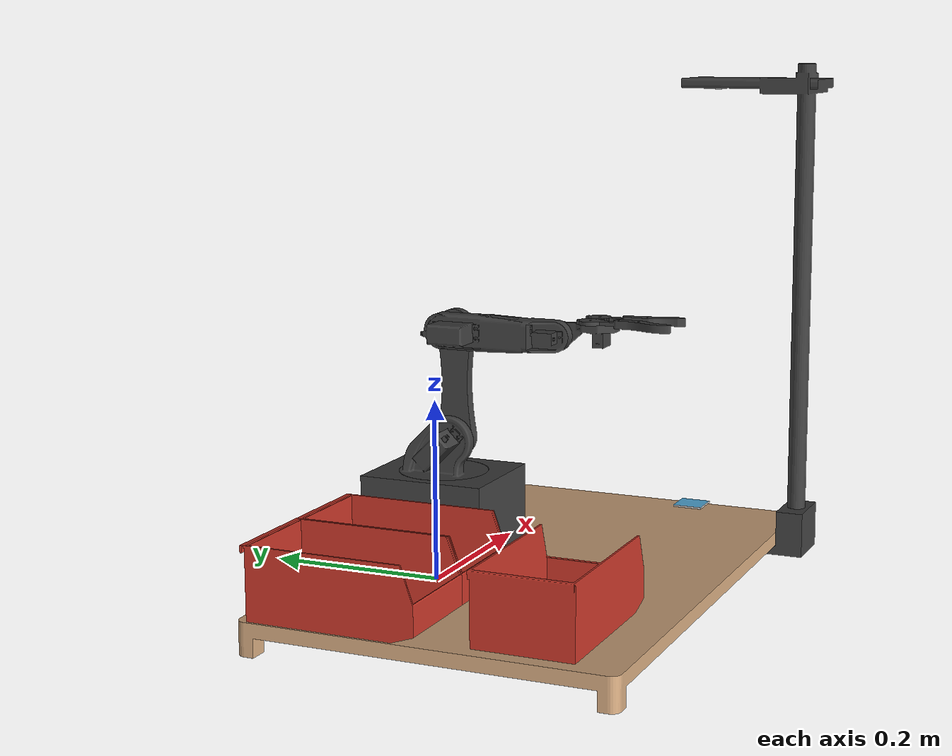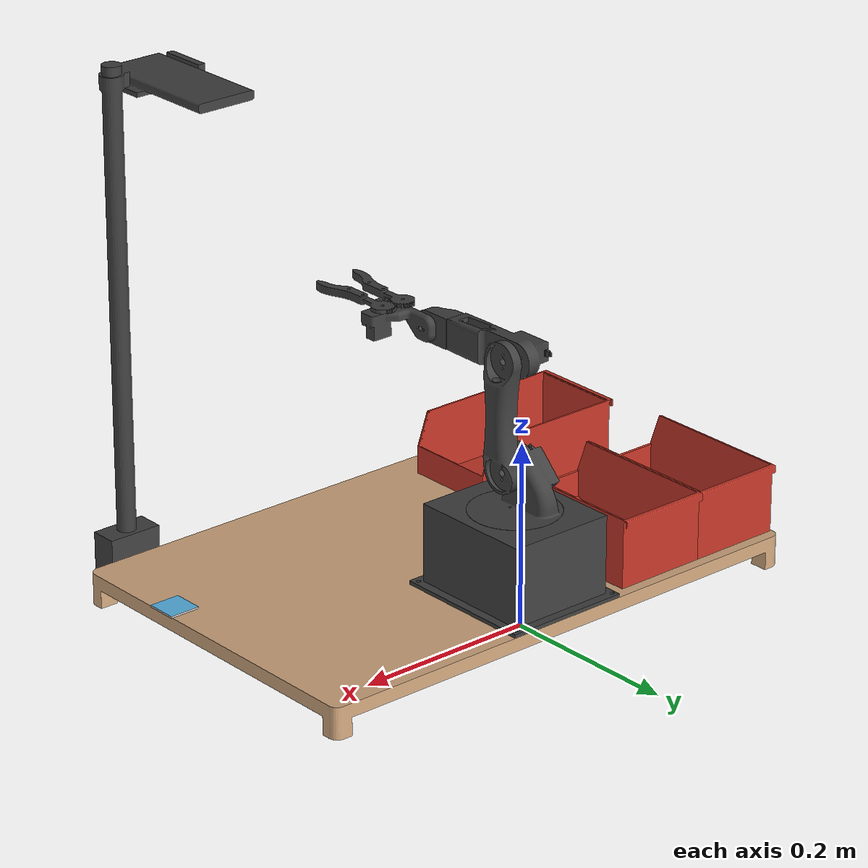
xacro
<?xml version="1.0" encoding = "UTF-8"?>
<robot name="robotic_arm" xmlns:xacro="http://www.ros.org/wiki/xacro">

<!-- Load Simulated or Real Hardware Interfaces -->
<xacro:arg name="sim_mode" default="true"/>

<!-- Include materials properties to be used with rviz -->
<xacro:include filename="$(find robotic_arm_description)/urdf/materials.xacro" />

<xacro:include filename="$(find robotic_arm_description)/urdf/robotic_arm.trans" />
<!-- Include material properties to be used in gazebo -->
<xacro:include filename="$(find robotic_arm_description)/urdf/robotic_arm_gazebo.xacro"/>

<!-- Include ros2_control plugin-->
<xacro:include filename="$(find robotic_arm_description)/urdf/robotic_arm_ros2_control.xacro"/>

<!-- Include camera plugins -->
<xacro:include filename="$(find robotic_arm_description)/urdf/robotic_arm_camera.xacro"/>

<!-- Links -->
<link name = "world"/>

<!--include aruco marke-->
<xacro:include filename="$(find robotic_arm_description)/urdf/aruco_marker.xacro"/>

<!-- Properties -->
<xacro:property name="PI" value="3.147"/>

<link name="base_link">
  <inertial>
    <origin xyz="2.5964963671146073e-05 -0.12750519341019426 0.02735001860163422" rpy="0 0 0"/>
    <mass value="2.562361438794821"/>
    <inertia ixx="0.033829" iyy="0.076749" izz="0.110468" ixy="-2e-06" iyz="0.0" ixz="-0.0"/>
  </inertial>
  <visual>
    <origin xyz="0 0 0" rpy="0 0 0"/>
    <geometry>
      <mesh filename="package://robotic_arm_description/meshes/base_link.stl" scale="0.001 0.001 0.001"/>
    </geometry>
    <material name="oak"/>
  </visual>
  <collision>
    <origin xyz="0 0 0" rpy="0 0 0"/>
    <geometry>
      <mesh filename="package://robotic_arm_description/meshes/base_link.stl" scale="0.001 0.001 0.001"/>
    </geometry>
  </collision>
</link>

<link name="container_cubes">
  <inertial>
    <origin xyz="0.0021344768560282723 -1.5647124724599282e-05 0.026103286200414536" rpy="0 0 0"/>
    <mass value="0.8859344258495231"/>
    <inertia ixx="0.002047" iyy="0.003759" izz="0.004728" ixy="1e-06" iyz="0.0" ixz="0.000223"/>
  </inertial>
  <visual>
    <origin xyz="0.2025 0.225 -0.035" rpy="0 0 0"/>
    <geometry>
      <mesh filename="package://robotic_arm_description/meshes/container_cubes.stl" scale="0.001 0.001 0.001"/>
    </geometry>
    <material name="led_red"/>
  </visual>
  <collision>
    <origin xyz="0.2025 0.225 -0.035" rpy="0 0 0"/>
    <geometry>
      <mesh filename="package://robotic_arm_description/meshes/container_cubes.stl" scale="0.001 0.001 0.001"/>
    </geometry>
  </collision>
</link>

<link name="container_cylinders">
  <inertial>
    <origin xyz="-1.565155782010108e-05 -0.0021344802460424653 0.026103286200414424" rpy="0 0 0"/>
    <mass value="0.8859344258495231"/>
    <inertia ixx="0.003759" iyy="0.002047" izz="0.004728" ixy="-1e-06" iyz="-0.000223" ixz="0.0"/>
  </inertial>
  <visual>
    <origin xyz="0.2425 0.02 -0.035" rpy="0 0 0"/>
    <geometry>
      <mesh filename="package://robotic_arm_description/meshes/container_cylinders.stl" scale="0.001 0.001 0.001"/>
    </geometry>
    <material name="led_red"/>
  </visual>
  <collision>
    <origin xyz="0.2425 0.02 -0.035" rpy="0 0 0"/>
    <geometry>
      <mesh filename="package://robotic_arm_description/meshes/container_cylinders.stl" scale="0.001 0.001 0.001"/>
    </geometry>
  </collision>
</link>

<link name="container_hexagons">
  <inertial>
    <origin xyz="-1.565155782010108e-05 -0.0021344802460424445 0.0261032862004145" rpy="0 0 0"/>
    <mass value="0.8859344258495231"/>
    <inertia ixx="0.003759" iyy="0.002047" izz="0.004728" ixy="-1e-06" iyz="-0.000223" ixz="0.0"/>
  </inertial>
  <visual>
    <origin xyz="0.1375 0.02 -0.035" rpy="0 0 0"/>
    <geometry>
      <mesh filename="package://robotic_arm_description/meshes/container_hexagons.stl" scale="0.001 0.001 0.001"/>
    </geometry>
    <material name="led_red"/>
  </visual>
  <collision>
    <origin xyz="0.1375 0.02 -0.035" rpy="0 0 0"/>
    <geometry>
      <mesh filename="package://robotic_arm_description/meshes/container_hexagons.stl" scale="0.001 0.001 0.001"/>
    </geometry>
  </collision>
</link>

<link name="camera_support">
  <inertial>
    <origin xyz="-0.018363826080468604 -0.008283937089531401 0.3065870557744901" rpy="0 0 0"/>
    <mass value="2.9385762719335418"/>
    <inertia ixx="0.133646" iyy="0.133692" izz="0.00521" ixy="0.001039" iyz="-0.006152" ixz="0.011452"/>
  </inertial>
  <visual>
    <origin xyz="-0.2675 0.32 -0.019" rpy="0 0 0"/>
    <geometry>
      <mesh filename="package://robotic_arm_description/meshes/camera_support.stl" scale="0.001 0.001 0.001"/>
    </geometry>
    <material name="black_3d_printed"/>
  </visual>
  <collision>
    <origin xyz="-0.2675 0.32 -0.019" rpy="0 0 0"/>
    <geometry>
      <mesh filename="package://robotic_arm_description/meshes/camera_support.stl" scale="0.001 0.001 0.001"/>
    </geometry>
  </collision>
</link>

<link name="camera_link">
  <inertial>
    <origin xyz="-2.682209454540896e-10 4.349266702619037e-07 -0.0009999921768903963" rpy="0 0 0"/>
    <mass value="0.006279999999999998"/>
    <inertia ixx="0.0" iyy="0.0" izz="0.0" ixy="0.0" iyz="0.0" ixz="-0.0"/>
  </inertial>
  <visual>
    <origin xyz="-0.2245 0.249302 -0.53399" rpy="0 0 0"/>
    <geometry>
      <mesh filename="package://robotic_arm_description/meshes/camera_link.stl" scale="0.001 0.001 0.001"/>
    </geometry>
    <material name="steel_satin"/>
  </visual>
  <collision>
    <origin xyz="-0.2245 0.249302 -0.53399" rpy="0 0 0"/>
    <geometry>
      <mesh filename="package://robotic_arm_description/meshes/camera_link.stl" scale="0.001 0.001 0.001"/>
    </geometry>
  </collision>
</link>

<link name="camera_link_frame">
</link>

<link name="base">
  <inertial>
    <origin xyz="6.051376774735407e-07 -0.08000032966587473 0.05136562059426733" rpy="0 0 0"/>
    <mass value="0.5102582987586253"/>
    <inertia ixx="0.00162" iyy="0.001541" izz="0.002267" ixy="-0.0" iyz="-0.0" ixz="0.0"/>
  </inertial>
  <visual>
    <origin xyz="-0.0 -0.07 -0.035" rpy="0 0 0"/>
    <geometry>
      <mesh filename="package://robotic_arm_description/meshes/base.stl" scale="0.001 0.001 0.001"/>
    </geometry>
    <material name="black_3d_printed"/>
  </visual>
  <collision>
    <origin xyz="-0.0 -0.07 -0.035" rpy="0 0 0"/>
    <geometry>
      <mesh filename="package://robotic_arm_description/meshes/base.stl" scale="0.001 0.001 0.001"/>
    </geometry>
  </collision>
</link>

<link name="waist">
  <inertial>
    <origin xyz="-0.013899791072812993 -0.0032841190361416073 0.023721429685911427" rpy="0 0 0"/>
    <mass value="0.11734363935702768"/>
    <inertia ixx="8.6e-05" iyy="7.9e-05" izz="8.5e-05" ixy="-3e-06" iyz="1.1e-05" ixz="1.4e-05"/>
  </inertial>
  <visual>
    <origin xyz="0.0 0.01 -0.121" rpy="0 0 0"/>
    <geometry>
      <mesh filename="package://robotic_arm_description/meshes/waist.stl" scale="0.001 0.001 0.001"/>
    </geometry>
    <material name="black_3d_printed"/>
  </visual>
  <collision>
    <origin xyz="0.0 0.01 -0.121" rpy="0 0 0"/>
    <geometry>
      <mesh filename="package://robotic_arm_description/meshes/waist.stl" scale="0.001 0.001 0.001"/>
    </geometry>
  </collision>
</link>

<link name="link_1">
  <inertial>
    <origin xyz="0.007817729878360883 -4.041924911227235e-07 0.06000021649587681" rpy="0 0 0"/>
    <mass value="0.07112302510728019"/>
    <inertia ixx="0.000121" iyy="0.000116" izz="1e-05" ixy="0.0" iyz="-0.0" ixz="0.0"/>
  </inertial>
  <visual>
    <origin xyz="0.001 0.024069 -0.161262" rpy="0 0 0"/>
    <geometry>
      <mesh filename="package://robotic_arm_description/meshes/link_1.stl" scale="0.001 0.001 0.001"/>
    </geometry>
    <material name="black_3d_printed"/>
  </visual>
  <collision>
    <origin xyz="0.001 0.024069 -0.161262" rpy="0 0 0"/>
    <geometry>
      <mesh filename="package://robotic_arm_description/meshes/link_1.stl" scale="0.001 0.001 0.001"/>
    </geometry>
  </collision>
</link>

<link name="link_2">
  <inertial>
    <origin xyz="-0.015945401802956827 -0.04619383654620061 4.672518474435616e-05" rpy="0 0 0"/>
    <mass value="0.11456681455688399"/>
    <inertia ixx="0.000224" iyy="2.7e-05" izz="0.00023" ixy="2.7e-05" iyz="0.0" ixz="-0.0"/>
  </inertial>
  <visual>
    <origin xyz="0.001 0.024069 -0.281262" rpy="0 0 0"/>
    <geometry>
      <mesh filename="package://robotic_arm_description/meshes/link_2.stl" scale="0.001 0.001 0.001"/>
    </geometry>
    <material name="black_3d_printed"/>
  </visual>
  <collision>
    <origin xyz="0.001 0.024069 -0.281262" rpy="0 0 0"/>
    <geometry>
      <mesh filename="package://robotic_arm_description/meshes/link_2.stl" scale="0.001 0.001 0.001"/>
    </geometry>
  </collision>
</link>

<link name="gripper_base">
  <inertial>
    <origin xyz="0.016989765812987632 -0.030975366550403616 0.004301084726513138" rpy="0 0 0"/>
    <mass value="0.02850874527831614"/>
    <inertia ixx="1e-05" iyy="7e-06" izz="1.4e-05" ixy="3e-06" iyz="1e-06" ixz="1e-06"/>
  </inertial>
  <visual>
    <origin xyz="-0.00285 0.141419 -0.281562" rpy="0 0 0"/>
    <geometry>
      <mesh filename="package://robotic_arm_description/meshes/gripper_base.stl" scale="0.001 0.001 0.001"/>
    </geometry>
    <material name="black_3d_printed"/>
  </visual>
  <collision>
    <origin xyz="-0.00285 0.141419 -0.281562" rpy="0 0 0"/>
    <geometry>
      <mesh filename="package://robotic_arm_description/meshes/gripper_base.stl" scale="0.001 0.001 0.001"/>
    </geometry>
  </collision>
</link>

<link name="gripper_finger_1">
  <inertial>
    <origin xyz="0.0025925452739234515 -0.04003700713978928 0.0020003926156425544" rpy="0 0 0"/>
    <mass value="0.00844478254120791"/>
    <inertia ixx="7e-06" iyy="0.0" izz="8e-06" ixy="1e-06" iyz="-0.0" ixz="0.0"/>
  </inertial>
  <visual>
    <origin xyz="-0.02875 0.179419 -0.295562" rpy="0 0 0"/>
    <geometry>
      <mesh filename="package://robotic_arm_description/meshes/gripper_finger_1.stl" scale="0.001 0.001 0.001"/>
    </geometry>
    <material name="black_3d_printed"/>
  </visual>
  <collision>
    <origin xyz="-0.02875 0.179419 -0.295562" rpy="0 0 0"/>
    <geometry>
      <mesh filename="package://robotic_arm_description/meshes/gripper_finger_1.stl" scale="0.001 0.001 0.001"/>
    </geometry>
  </collision>
</link>

<link name="gripper_finger_2">
  <inertial>
    <origin xyz="-0.002592545273924804 -0.04003700713978928 0.002000392615642499" rpy="0 0 0"/>
    <mass value="0.00844478254120791"/>
    <inertia ixx="7e-06" iyy="0.0" izz="8e-06" ixy="-1e-06" iyz="-0.0" ixz="-0.0"/>
  </inertial>
  <visual>
    <origin xyz="-0.00185 0.179419 -0.295562" rpy="0 0 0"/>
    <geometry>
      <mesh filename="package://robotic_arm_description/meshes/gripper_finger_2.stl" scale="0.001 0.001 0.001"/>
    </geometry>
    <material name="black_3d_printed"/>
  </visual>
  <collision>
    <origin xyz="-0.00185 0.179419 -0.295562" rpy="0 0 0"/>
    <geometry>
      <mesh filename="package://robotic_arm_description/meshes/gripper_finger_2.stl" scale="0.001 0.001 0.001"/>
    </geometry>
  </collision>
</link>

<!-- Joints -->

<joint name = "virtual_joint" type= "fixed">
  <parent link="world"/>
  <child link="base_link"/>
</joint>

<joint name="rigid_1" type="fixed">
  <origin xyz="0.0 0.07 0.035" rpy="0 0 0"/>
  <parent link="base_link"/>
  <child link="base"/>
</joint>

<joint name="rigid_2" type="fixed">
  <origin xyz="-0.2025 -0.225 0.035" rpy="0 0 0"/>
  <parent link="base_link"/>
  <child link="container_cubes"/>
</joint>

<joint name="rigid_3" type="fixed">
  <origin xyz="-0.2425 -0.02 0.035" rpy="0 0 0"/>
  <parent link="base_link"/>
  <child link="container_cylinders"/>
</joint>

<joint name="rigid_4" type="fixed">
  <origin xyz="-0.1375 -0.02 0.035" rpy="0 0 0"/>
  <parent link="base_link"/>
  <child link="container_hexagons"/>
</joint>

<joint name="rigid_5" type="fixed">
  <origin xyz="0.2375 -0.32 0.019" rpy="0 0 0"/>
  <parent link="base_link"/>
  <child link="camera_support"/>
</joint>

<joint name="camera_joint" type="fixed">
  <origin xyz="-0.043 0.070698 0.51499" rpy="0 0 0"/>
  <parent link="camera_support"/>
  <child link="camera_link"/>
</joint>

<joint name="camera_link_frame_joint" type="fixed">
  <origin xyz="0.0 0.0 0.0" rpy="${PI} ${PI/2} 0"/>
  <parent link="camera_link"/>
  <child link="camera_link_frame"/>

</joint>

<joint name="base_waist_joint" type="revolute">
  <origin xyz="-0.0 -0.08 0.086" rpy="0 0 0"/>
  <parent link="base"/>
  <child link="waist"/>
  <axis xyz="-0.0 -0.0 1.0"/>
  <limit upper="1.570796" lower="-1.570796" effort="100" velocity="100"/>
</joint>

<joint name="waist_link1_joint" type="revolute">
  <origin xyz="-0.001 -0.014069 0.040262" rpy="0 0 0"/>
  <parent link="waist"/>
  <child link="link_1"/>
  <axis xyz="1.0 0.0 -0.0"/>
  <limit upper="1.570796" lower="-1.570796" effort="100" velocity="100"/>
</joint>

<joint name="link1_link2_joint" type="revolute">
  <origin xyz="0.0 0.0 0.12" rpy="0 0 0"/>
  <parent link="link_1"/>
  <child link="link_2"/>
  <axis xyz="1.0 -0.0 -0.0"/>
  <limit upper="1.570796" lower="-1.570796" effort="100" velocity="100"/>
</joint>

<joint name="link2_gripper_base_joint" type="revolute">
  <origin xyz="0.00385 -0.11735 0.0003" rpy="0 0 0"/>
  <parent link="link_2"/>
  <child link="gripper_base"/>
  <axis xyz="1.0 -0.0 0.0"/>
  <limit upper="1.570796" lower="-1.570796" effort="100" velocity="100"/>
</joint>

<joint name="right_gripper_joint" type="revolute">
  <origin xyz="0.0259 -0.038 0.014" rpy="0 0 0"/>
  <parent link="gripper_base"/>
  <child link="gripper_finger_1"/>
  <axis xyz="-0.0 0.0 1.0"/>
  <limit upper="1.047198" lower="0.0" effort="100" velocity="100"/>
</joint>

<joint name="left_gripper_joint" type="revolute">
  <origin xyz="-0.001 -0.038 0.014" rpy="0 0 0"/>
  <parent link="gripper_base"/>
  <child link="gripper_finger_2"/>
  <axis xyz="-0.0 0.0 1.0"/>
  <dynamics damping="10.0" friction="2.0"/>
  <limit upper="0.0" lower="-1.047198" effort="100" velocity="100"/>
  <mimic joint = "right_gripper_joint" multiplier = "-1"/>
</joint>

</robot>

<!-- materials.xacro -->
<robot name="robotic_arm" xmlns:xacro="http://www.ros.org/wiki/xacro" >

<material name="silver_default">
  <color rgba="0.700 0.700 0.700 1.000"/>
</material>

<material name="led_red">
  <color rgba="0.7686274509803922 0.20784313725490197 0.15294117647058825 1.0"/>
</material>

<material name="black_3d_printed">
  <color rgba="0.24705882352941178 0.24705882352941178 0.24705882352941178 1.0"/>
</material>

<material name = "oak">
  <color rgba = "0.8157 0.6510 0.4902 1.0 "/>
</material>

<material name="steel_satin">
  <color rgba="0.6274509803921569 0.6274509803921569 0.6274509803921569 1.0"/>
</material>

</robot>

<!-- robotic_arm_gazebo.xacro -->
<robot name="robotic_arm" xmlns:xacro="http://www.ros.org/wiki/xacro" >

<xacro:property name="base_color" value =  "Gazebo/Wood"/>
<xacro:property name="waist_color" value = "Gazebo/FlatBlack"/>
<xacro:property name="link_1_color" value = "Gazebo/FlatBlack"/>
<xacro:property name="link_2_color" value = "Gazebo/FlatBlack" />
<xacro:property name="gripper_base_color" value = "Gazebo/FlatBlack" />
<xacro:property name="gripper_gears" value="Gazebo/Blue"/>
<xacro:property name="camera_support_color" value="Gazebo/WoodFloor" />
<xacro:property name="container_color" value="Gazebo/Red" />
<xacro:property name="camera_color" value="Gazebo/Silver" />

  <gazebo reference="base_link">
    <material>${base_color}</material>
    <mu1>0.2</mu1>
    <mu2>0.2</mu2>
    <self_collide>true</self_collide>
    <gravity>true</gravity>
  </gazebo>

  <gazebo reference="base">
    <material>${waist_color}</material>
    <mu1>0.2</mu1>
    <mu2>0.2</mu2>
    <self_collide>true</self_collide>
  </gazebo>

  <gazebo reference="waist">
    <material>${waist_color}</material>
    <mu1>0.2</mu1>
    <mu2>0.2</mu2>
    <self_collide>true</self_collide>
  </gazebo>

  <gazebo reference="link_1">
    <material>${link_1_color}</material>
    <mu1>0.2</mu1>
    <mu2>0.2</mu2>
    <self_collide>true</self_collide>
  </gazebo>

  <gazebo reference="link_2">
    <material>${link_2_color}</material>
    <mu1>0.2</mu1>
    <mu2>0.2</mu2>
    <self_collide>true</self_collide>
  </gazebo>

  <gazebo reference="gripper_base">
    <material>${gripper_base_color}</material>
    <mu1>0.2</mu1>
    <mu2>0.2</mu2>
    <self_collide>true</self_collide>
  </gazebo>

  <gazebo reference="gripper_finger_1">
    <material>${gripper_gears}</material>
    <mu1>0.2</mu1>
    <mu2>0.2</mu2>
    <self_collide>true</self_collide>
  </gazebo>

  <gazebo reference="gripper_finger_2">
    <material>${gripper_gears}</material>
    <mu1>0.2</mu1>
    <mu2>0.2</mu2>
    <self_collide>true</self_collide>
  </gazebo>

  <gazebo reference="camera_support">
    <material>${camera_support_color}</material>
    <mu1>0.2</mu1>
    <mu2>0.2</mu2>
    <self_collide>true</self_collide>
  </gazebo>

  <gazebo reference="camera_link">
    <material>${camera_color}</material>
    <mu1>0.2</mu1>
    <mu2>0.2</mu2>
    <self_collide>true</self_collide>
  </gazebo>

  <gazebo reference="container_cubes">
    <material>${container_color}</material>
    <mu1>0.2</mu1>
    <mu2>0.2</mu2>
    <self_collide>true</self_collide>
  </gazebo>

  <gazebo reference="container_cylinders">
    <material>${container_color}</material>
    <mu1>0.2</mu1>
    <mu2>0.2</mu2>
    <self_collide>true</self_collide>
  </gazebo>

  <gazebo reference="container_hexagons">
    <material>${container_color}</material>
    <mu1>0.2</mu1>
    <mu2>0.2</mu2>
    <self_collide>true</self_collide>
  </gazebo>

</robot>

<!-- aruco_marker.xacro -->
<robot xmlns:xacro="http://wiki.ros.org/xacro">
    <!-- Import r6bot macro -->
  <link name = "aruco_link">
    <visual>
        <origin xyz="0 0 0.002" rpy="0 0 0"/>
        <geometry>
            <mesh filename = "package://robotic_arm_description/meshes/Aruco-Cube.dae"/>
        </geometry>
    </visual>

    <collision>
        <origin xyz="0 0 0.002" rpy="0 0 0"/>
        <geometry>
            <mesh filename = "package://robotic_arm_description/meshes/Aruco-Cube.stl"/>
        </geometry>
    </collision>
    <inertial>
      <mass value = "0.0028"/>
      <inertia ixx = "1.6e-9" ixy = "-1.2e-10" ixz = "-1.2e-10" iyy = "-1.6e-9" iyz = "-1.2e-10" izz = "2.3e-11"/>
    </inertial>
  </link>

  <joint name = "aruco_world" type = "fixed">
    <parent link = "world"/>
    <child link = "aruco_link"/>
    <origin rpy = "0 0 0" xyz = "0.283 -0.200 0.035"/>
  </joint>
</robot>
